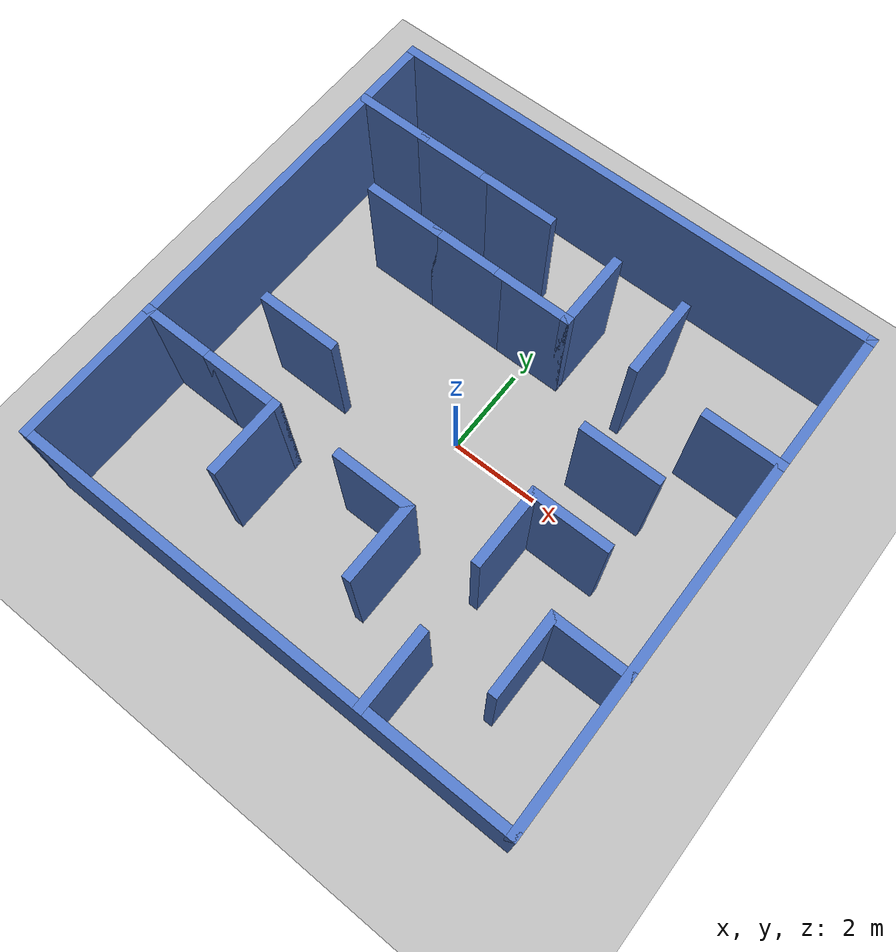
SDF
<sdf version='1.7'>
  <world name='default'>
    <light name='sun' type='directional'>
      <cast_shadows>1</cast_shadows><pose>0 0 10 0 0 0</pose>
      <diffuse>0.8 0.8 0.8 1</diffuse><specular>0.2 0.2 0.2 1</specular>
      <attenuation><range>1000</range><constant>0.9</constant><linear>0.01</linear><quadratic>0.001</quadratic></attenuation>
      <direction>-0.5 0.1 -0.9</direction>
    </light>
    <model name='ground_plane'><static>1</static><link name='link'>
      <collision name='collision'><geometry><plane><normal>0 0 1</normal><size>100 100</size></plane></geometry></collision>
      <visual name='visual'><geometry><plane><normal>0 0 1</normal><size>100 100</size></plane></geometry>
        <material><ambient>0.7 0.7 0.7 1</ambient><diffuse>0.7 0.7 0.7 1</diffuse></material></visual>
    </link></model>
    <gravity>0 0 -9.8</gravity>
    <physics type='ode'><max_step_size>0.004</max_step_size><real_time_factor>1</real_time_factor><real_time_update_rate>250</real_time_update_rate></physics>
    <plugin filename="ignition-gazebo-physics-system" name="gz::sim::systems::Physics"/>
    <plugin filename="ignition-gazebo-sensors-system" name="gz::sim::systems::Sensors"><render_engine>ogre2</render_engine></plugin>
    <plugin filename="ignition-gazebo-imu-system" name="gz::sim::systems::Imu"/>
    <plugin filename="ignition-gazebo-user-commands-system" name="gz::sim::systems::UserCommands"/>
    <plugin filename="ignition-gazebo-scene-broadcaster-system" name="gz::sim::systems::SceneBroadcaster"/>
    <scene><ambient>0.4 0.4 0.4 1</ambient><background>0.7 0.7 0.7 1</background><shadows>1</shadows></scene>
    <model name='maze'><static>1</static><pose>0 0 0 0 0 0</pose>
      <link name='wall_0'>
        <pose>-2.4000 -3.2000 1.500 0 0 0</pose>
        <collision name='c'><geometry><box><size>0.2000 1.8000 3.000</size></box></geometry></collision>
        <visual name='v'><geometry><box><size>0.2000 1.8000 3.000</size></box></geometry>
          <material><ambient>0.25 0.35 0.6 1</ambient><diffuse>0.3 0.45 0.75 1</diffuse></material>
        </visual>
      </link>
      <link name='wall_1'>
        <pose>0.8000 -3.2000 1.500 0 0 0</pose>
        <collision name='c'><geometry><box><size>0.2000 1.8000 3.000</size></box></geometry></collision>
        <visual name='v'><geometry><box><size>0.2000 1.8000 3.000</size></box></geometry>
          <material><ambient>0.25 0.35 0.6 1</ambient><diffuse>0.3 0.45 0.75 1</diffuse></material>
        </visual>
      </link>
      <link name='wall_2'>
        <pose>0.8000 3.2000 1.500 0 0 0</pose>
        <collision name='c'><geometry><box><size>0.2000 1.8000 3.000</size></box></geometry></collision>
        <visual name='v'><geometry><box><size>0.2000 1.8000 3.000</size></box></geometry>
          <material><ambient>0.25 0.35 0.6 1</ambient><diffuse>0.3 0.45 0.75 1</diffuse></material>
        </visual>
      </link>
      <link name='wall_3'>
        <pose>2.4000 -4.8000 1.500 0 0 0</pose>
        <collision name='c'><geometry><box><size>0.2000 1.8000 3.000</size></box></geometry></collision>
        <visual name='v'><geometry><box><size>0.2000 1.8000 3.000</size></box></geometry>
          <material><ambient>0.25 0.35 0.6 1</ambient><diffuse>0.3 0.45 0.75 1</diffuse></material>
        </visual>
      </link>
      <link name='wall_4'>
        <pose>2.4000 -1.6000 1.500 0 0 0</pose>
        <collision name='c'><geometry><box><size>0.2000 1.8000 3.000</size></box></geometry></collision>
        <visual name='v'><geometry><box><size>0.2000 1.8000 3.000</size></box></geometry>
          <material><ambient>0.25 0.35 0.6 1</ambient><diffuse>0.3 0.45 0.75 1</diffuse></material>
        </visual>
      </link>
      <link name='wall_5'>
        <pose>2.4000 3.2000 1.500 0 0 0</pose>
        <collision name='c'><geometry><box><size>0.2000 1.8000 3.000</size></box></geometry></collision>
        <visual name='v'><geometry><box><size>0.2000 1.8000 3.000</size></box></geometry>
          <material><ambient>0.25 0.35 0.6 1</ambient><diffuse>0.3 0.45 0.75 1</diffuse></material>
        </visual>
      </link>
      <link name='wall_6'>
        <pose>4.0000 -3.2000 1.500 0 0 0</pose>
        <collision name='c'><geometry><box><size>0.2000 1.8000 3.000</size></box></geometry></collision>
        <visual name='v'><geometry><box><size>0.2000 1.8000 3.000</size></box></geometry>
          <material><ambient>0.25 0.35 0.6 1</ambient><diffuse>0.3 0.45 0.75 1</diffuse></material>
        </visual>
      </link>
      <link name='wall_7'>
        <pose>-4.8000 -2.4000 1.500 0 0 0</pose>
        <collision name='c'><geometry><box><size>1.8000 0.2000 3.000</size></box></geometry></collision>
        <visual name='v'><geometry><box><size>1.8000 0.2000 3.000</size></box></geometry>
          <material><ambient>0.25 0.35 0.6 1</ambient><diffuse>0.3 0.45 0.75 1</diffuse></material>
        </visual>
      </link>
      <link name='wall_8'>
        <pose>-4.8000 4.0000 1.500 0 0 0</pose>
        <collision name='c'><geometry><box><size>1.8000 0.2000 3.000</size></box></geometry></collision>
        <visual name='v'><geometry><box><size>1.8000 0.2000 3.000</size></box></geometry>
          <material><ambient>0.25 0.35 0.6 1</ambient><diffuse>0.3 0.45 0.75 1</diffuse></material>
        </visual>
      </link>
      <link name='wall_9'>
        <pose>-3.2000 -2.4000 1.500 0 0 0</pose>
        <collision name='c'><geometry><box><size>1.8000 0.2000 3.000</size></box></geometry></collision>
        <visual name='v'><geometry><box><size>1.8000 0.2000 3.000</size></box></geometry>
          <material><ambient>0.25 0.35 0.6 1</ambient><diffuse>0.3 0.45 0.75 1</diffuse></material>
        </visual>
      </link>
      <link name='wall_10'>
        <pose>-3.2000 -0.8000 1.500 0 0 0</pose>
        <collision name='c'><geometry><box><size>1.8000 0.2000 3.000</size></box></geometry></collision>
        <visual name='v'><geometry><box><size>1.8000 0.2000 3.000</size></box></geometry>
          <material><ambient>0.25 0.35 0.6 1</ambient><diffuse>0.3 0.45 0.75 1</diffuse></material>
        </visual>
      </link>
      <link name='wall_11'>
        <pose>-3.2000 2.4000 1.500 0 0 0</pose>
        <collision name='c'><geometry><box><size>1.8000 0.2000 3.000</size></box></geometry></collision>
        <visual name='v'><geometry><box><size>1.8000 0.2000 3.000</size></box></geometry>
          <material><ambient>0.25 0.35 0.6 1</ambient><diffuse>0.3 0.45 0.75 1</diffuse></material>
        </visual>
      </link>
      <link name='wall_12'>
        <pose>-3.2000 4.0000 1.500 0 0 0</pose>
        <collision name='c'><geometry><box><size>1.8000 0.2000 3.000</size></box></geometry></collision>
        <visual name='v'><geometry><box><size>1.8000 0.2000 3.000</size></box></geometry>
          <material><ambient>0.25 0.35 0.6 1</ambient><diffuse>0.3 0.45 0.75 1</diffuse></material>
        </visual>
      </link>
      <link name='wall_13'>
        <pose>-1.6000 2.4000 1.500 0 0 0</pose>
        <collision name='c'><geometry><box><size>1.8000 0.2000 3.000</size></box></geometry></collision>
        <visual name='v'><geometry><box><size>1.8000 0.2000 3.000</size></box></geometry>
          <material><ambient>0.25 0.35 0.6 1</ambient><diffuse>0.3 0.45 0.75 1</diffuse></material>
        </visual>
      </link>
      <link name='wall_14'>
        <pose>-1.6000 4.0000 1.500 0 0 0</pose>
        <collision name='c'><geometry><box><size>1.8000 0.2000 3.000</size></box></geometry></collision>
        <visual name='v'><geometry><box><size>1.8000 0.2000 3.000</size></box></geometry>
          <material><ambient>0.25 0.35 0.6 1</ambient><diffuse>0.3 0.45 0.75 1</diffuse></material>
        </visual>
      </link>
      <link name='wall_15'>
        <pose>0.0000 -2.4000 1.500 0 0 0</pose>
        <collision name='c'><geometry><box><size>1.8000 0.2000 3.000</size></box></geometry></collision>
        <visual name='v'><geometry><box><size>1.8000 0.2000 3.000</size></box></geometry>
          <material><ambient>0.25 0.35 0.6 1</ambient><diffuse>0.3 0.45 0.75 1</diffuse></material>
        </visual>
      </link>
      <link name='wall_16'>
        <pose>0.0000 2.4000 1.500 0 0 0</pose>
        <collision name='c'><geometry><box><size>1.8000 0.2000 3.000</size></box></geometry></collision>
        <visual name='v'><geometry><box><size>1.8000 0.2000 3.000</size></box></geometry>
          <material><ambient>0.25 0.35 0.6 1</ambient><diffuse>0.3 0.45 0.75 1</diffuse></material>
        </visual>
      </link>
      <link name='wall_17'>
        <pose>3.2000 -0.8000 1.500 0 0 0</pose>
        <collision name='c'><geometry><box><size>1.8000 0.2000 3.000</size></box></geometry></collision>
        <visual name='v'><geometry><box><size>1.8000 0.2000 3.000</size></box></geometry>
          <material><ambient>0.25 0.35 0.6 1</ambient><diffuse>0.3 0.45 0.75 1</diffuse></material>
        </visual>
      </link>
      <link name='wall_18'>
        <pose>3.2000 0.8000 1.500 0 0 0</pose>
        <collision name='c'><geometry><box><size>1.8000 0.2000 3.000</size></box></geometry></collision>
        <visual name='v'><geometry><box><size>1.8000 0.2000 3.000</size></box></geometry>
          <material><ambient>0.25 0.35 0.6 1</ambient><diffuse>0.3 0.45 0.75 1</diffuse></material>
        </visual>
      </link>
      <link name='wall_19'>
        <pose>4.8000 -2.4000 1.500 0 0 0</pose>
        <collision name='c'><geometry><box><size>1.8000 0.2000 3.000</size></box></geometry></collision>
        <visual name='v'><geometry><box><size>1.8000 0.2000 3.000</size></box></geometry>
          <material><ambient>0.25 0.35 0.6 1</ambient><diffuse>0.3 0.45 0.75 1</diffuse></material>
        </visual>
      </link>
      <link name='wall_20'>
        <pose>4.8000 2.4000 1.500 0 0 0</pose>
        <collision name='c'><geometry><box><size>1.8000 0.2000 3.000</size></box></geometry></collision>
        <visual name='v'><geometry><box><size>1.8000 0.2000 3.000</size></box></geometry>
          <material><ambient>0.25 0.35 0.6 1</ambient><diffuse>0.3 0.45 0.75 1</diffuse></material>
        </visual>
      </link>
      <link name='wall_21'>
        <pose>0.0000 5.6000 1.500 0 0 0</pose>
        <collision name='c'><geometry><box><size>11.4000 0.2000 3.000</size></box></geometry></collision>
        <visual name='v'><geometry><box><size>11.4000 0.2000 3.000</size></box></geometry>
          <material><ambient>0.25 0.35 0.6 1</ambient><diffuse>0.3 0.45 0.75 1</diffuse></material>
        </visual>
      </link>
      <link name='wall_22'>
        <pose>0.0000 -5.6000 1.500 0 0 0</pose>
        <collision name='c'><geometry><box><size>11.4000 0.2000 3.000</size></box></geometry></collision>
        <visual name='v'><geometry><box><size>11.4000 0.2000 3.000</size></box></geometry>
          <material><ambient>0.25 0.35 0.6 1</ambient><diffuse>0.3 0.45 0.75 1</diffuse></material>
        </visual>
      </link>
      <link name='wall_23'>
        <pose>5.6000 0.0000 1.500 0 0 0</pose>
        <collision name='c'><geometry><box><size>0.2000 11.4000 3.000</size></box></geometry></collision>
        <visual name='v'><geometry><box><size>0.2000 11.4000 3.000</size></box></geometry>
          <material><ambient>0.25 0.35 0.6 1</ambient><diffuse>0.3 0.45 0.75 1</diffuse></material>
        </visual>
      </link>
      <link name='wall_24'>
        <pose>-5.6000 0.0000 1.500 0 0 0</pose>
        <collision name='c'><geometry><box><size>0.2000 11.4000 3.000</size></box></geometry></collision>
        <visual name='v'><geometry><box><size>0.2000 11.4000 3.000</size></box></geometry>
          <material><ambient>0.25 0.35 0.6 1</ambient><diffuse>0.3 0.45 0.75 1</diffuse></material>
        </visual>
      </link>
    </model>
  </world>
</sdf>
